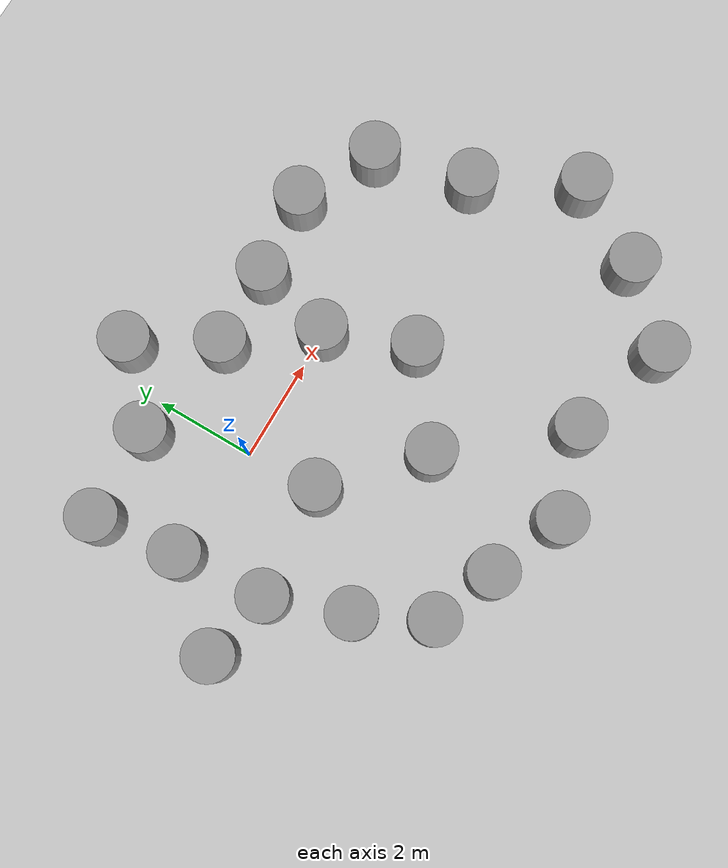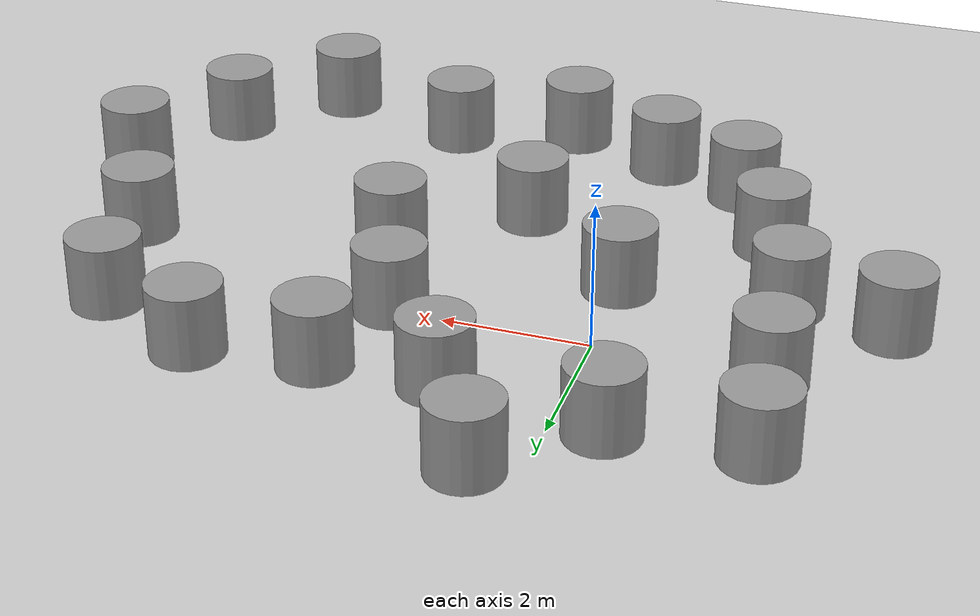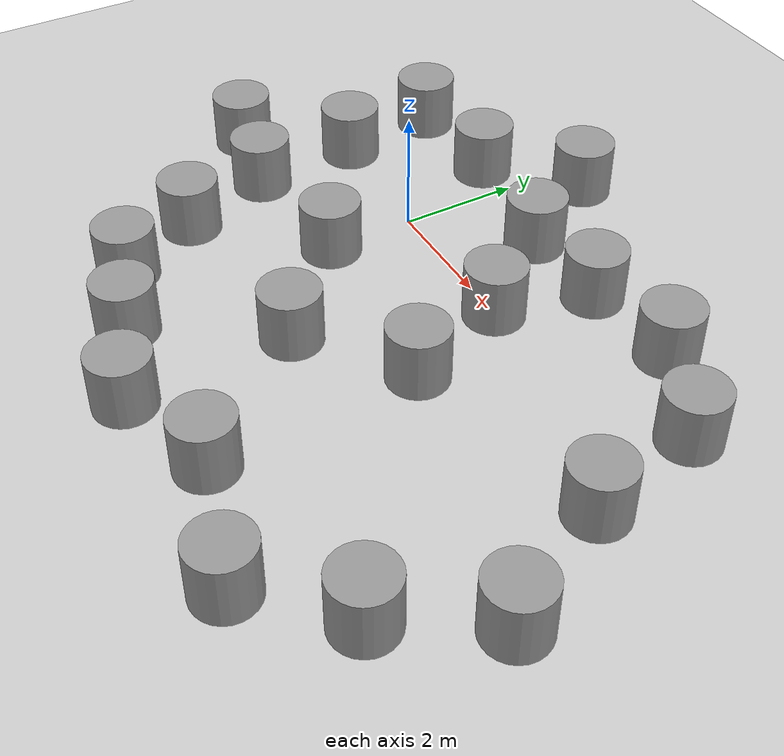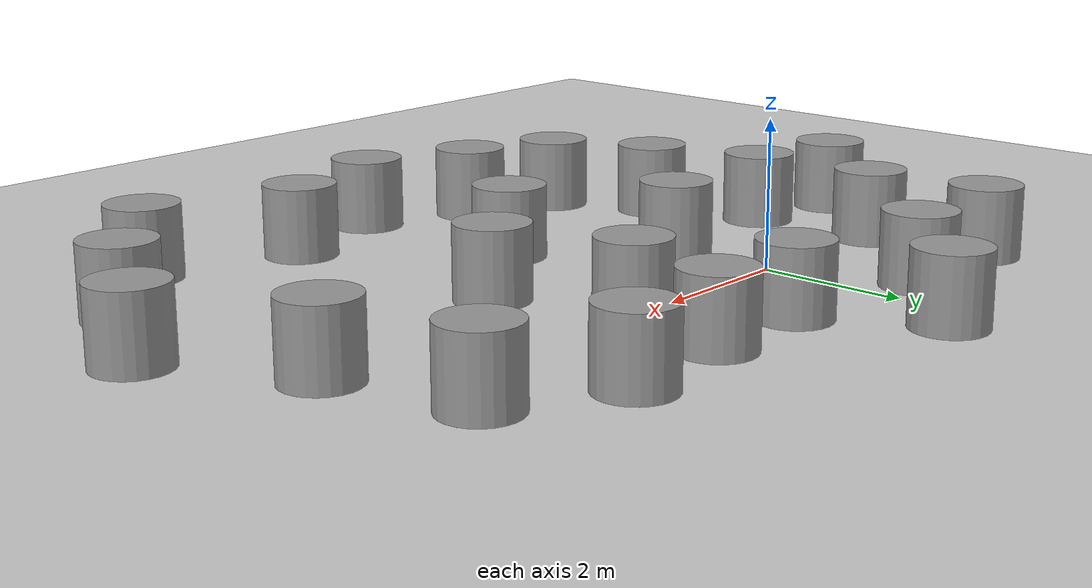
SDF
<sdf version="1.7">
 <world name="default">
  <model name="ground_plane">
   <static>1</static>
   <link name="link">
    <collision name="collision">
     <geometry><plane><normal>0 0 1</normal><size>100 100</size></plane></geometry>
     <surface><friction><ode><mu>100</mu><mu2>50</mu2></ode></friction></surface>
    </collision>
    <visual name="visual">
     <cast_shadows>0</cast_shadows>
     <geometry><plane><normal>0 0 1</normal><size>100 100</size></plane></geometry>
     <material>
      <script><uri>file://media/materials/scripts/gazebo.material</uri><name>Gazebo/Grey</name></script>
     </material>
    </visual>
   </link>
  </model>
  <light name="sun" type="directional">
   <pose>0 0 10 0 -0 0</pose>
   <diffuse>0.8 0.8 0.8 1</diffuse>
   <specular>0.2 0.2 0.2 1</specular>
   <attenuation>
    <range>1000</range>
    <constant>0.9</constant>
    <linear>0.01</linear>
    <quadratic>0.001</quadratic>
   </attenuation>
   <direction>-0.5 0.1 -0.9</direction>
   <spot><inner_angle>0</inner_angle><outer_angle>0</outer_angle><falloff>0</falloff></spot>
  </light>
  <scene><shadows>0</shadows><ambient>0.4 0.4 0.4 1</ambient><background>0.7 0.7 0.7 1</background></scene>
  <physics type="ode">
   <real_time_update_rate>1000</real_time_update_rate>
   <max_step_size>0.001</max_step_size>
   <real_time_factor>1</real_time_factor>
   <ode>
    <solver>
     <type>quick</type>
     <iters>150</iters>
     <precon_iters>0</precon_iters>
     <sor>1.4</sor>
     <use_dynamic_moi_rescaling>1</use_dynamic_moi_rescaling>
    </solver>
    <constraints>
     <cfm>1e-05</cfm>
     <erp>0.2</erp>
     <contact_max_correcting_vel>2000</contact_max_correcting_vel>
     <contact_surface_layer>0.01</contact_surface_layer>
    </constraints>
   </ode>
  </physics>
  <gravity>0 0 -9.8</gravity>
  <magnetic_field>6e-06 2.3e-05 -4.2e-05</magnetic_field>
  <atmosphere type="adiabatic"/>
  <spherical_coordinates>
   <surface_model>EARTH_WGS84</surface_model>
   <latitude_deg>0</latitude_deg>
   <longitude_deg>0</longitude_deg>
   <elevation>0</elevation>
   <heading_deg>0</heading_deg>
  </spherical_coordinates>
  <model name="unit_cylinder">
   <pose>1.55039 1.49242 0.499993 4e-06 3e-06 -0</pose>
   <link name="link">
    <inertial>
     <mass>1</mass>
     <inertia><ixx>0.145833</ixx><ixy>0</ixy><ixz>0</ixz><iyy>0.145833</iyy><iyz>0</iyz><izz>0.125</izz></inertia>
    </inertial>
    <collision name="collision">
     <geometry><cylinder><radius>0.5</radius><length>1</length></cylinder></geometry>
    </collision>
    <visual name="visual">
     <geometry><cylinder><radius>0.5</radius><length>1</length></cylinder></geometry>
     <material>
      <script><name>Gazebo/Grey</name><uri>file://media/materials/scripts/gazebo.material</uri></script>
     </material>
    </visual>
   </link>
  </model>
  <model name="unit_cylinder_0">
   <pose>2.71442 -0.028142 0.499998 -4e-06 -3e-06 -0</pose>
   <link name="link">
    <inertial>
     <mass>1</mass>
     <inertia><ixx>0.145833</ixx><ixy>0</ixy><ixz>0</ixz><iyy>0.145833</iyy><iyz>0</iyz><izz>0.125</izz></inertia>
    </inertial>
    <collision name="collision">
     <geometry><cylinder><radius>0.5</radius><length>1</length></cylinder></geometry>
    </collision>
    <visual name="visual">
     <geometry><cylinder><radius>0.5</radius><length>1</length></cylinder></geometry>
     <material>
      <script><name>Gazebo/Grey</name><uri>file://media/materials/scripts/gazebo.material</uri></script>
     </material>
    </visual>
   </link>
  </model>
  <model name="unit_cylinder_1">
   <pose>0.051197 -1.47652 0.499993 4e-06 4e-06 -0</pose>
   <link name="link">
    <inertial>
     <mass>1</mass>
     <inertia><ixx>0.145833</ixx><ixy>0</ixy><ixz>0</ixz><iyy>0.145833</iyy><iyz>0</iyz><izz>0.125</izz></inertia>
    </inertial>
    <collision name="collision">
     <geometry><cylinder><radius>0.5</radius><length>1</length></cylinder></geometry>
    </collision>
    <visual name="visual">
     <geometry><cylinder><radius>0.5</radius><length>1</length></cylinder></geometry>
     <material>
      <script><name>Gazebo/Grey</name><uri>file://media/materials/scripts/gazebo.material</uri></script>
     </material>
    </visual>
   </link>
  </model>
  <model name="unit_cylinder_2">
   <pose>-0.654714 1.86729 0.499998 -4e-06 -4e-06 -0</pose>
   <link name="link">
    <inertial>
     <mass>1</mass>
     <inertia><ixx>0.145833</ixx><ixy>0</ixy><ixz>0</ixz><iyy>0.145833</iyy><iyz>0</iyz><izz>0.125</izz></inertia>
    </inertial>
    <collision name="collision">
     <geometry><cylinder><radius>0.5</radius><length>1</length></cylinder></geometry>
    </collision>
    <visual name="visual">
     <geometry><cylinder><radius>0.5</radius><length>1</length></cylinder></geometry>
     <material>
      <script><name>Gazebo/Grey</name><uri>file://media/materials/scripts/gazebo.material</uri></script>
     </material>
    </visual>
   </link>
  </model>
  <model name="unit_cylinder_3">
   <pose>-2.28462 0.110741 0.499998 -4e-06 -4e-06 -0</pose>
   <link name="link">
    <inertial>
     <mass>1</mass>
     <inertia><ixx>0.145833</ixx><ixy>0</ixy><ixz>0</ixz><iyy>0.145833</iyy><iyz>0</iyz><izz>0.125</izz></inertia>
    </inertial>
    <collision name="collision">
     <geometry><cylinder><radius>0.5</radius><length>1</length></cylinder></geometry>
    </collision>
    <visual name="visual">
     <geometry><cylinder><radius>0.5</radius><length>1</length></cylinder></geometry>
     <material>
      <script><name>Gazebo/Grey</name><uri>file://media/materials/scripts/gazebo.material</uri></script>
     </material>
    </visual>
   </link>
  </model>
  <model name="unit_cylinder_4">
   <pose>-2.15514 -1.68476 0.499993 4e-06 4e-06 -0</pose>
   <link name="link">
    <inertial>
     <mass>1</mass>
     <inertia><ixx>0.145833</ixx><ixy>0</ixy><ixz>0</ixz><iyy>0.145833</iyy><iyz>0</iyz><izz>0.125</izz></inertia>
    </inertial>
    <collision name="collision">
     <geometry><cylinder><radius>0.5</radius><length>1</length></cylinder></geometry>
    </collision>
    <visual name="visual">
     <geometry><cylinder><radius>0.5</radius><length>1</length></cylinder></geometry>
     <material>
      <script><name>Gazebo/Grey</name><uri>file://media/materials/scripts/gazebo.material</uri></script>
     </material>
    </visual>
   </link>
  </model>
  <model name="unit_cylinder_5">
   <pose>0.644093 3.05934 0.499998 -4e-06 -4e-06 -0</pose>
   <link name="link">
    <inertial>
     <mass>1</mass>
     <inertia><ixx>0.145833</ixx><ixy>0</ixy><ixz>0</ixz><iyy>0.145833</iyy><iyz>0</iyz><izz>0.125</izz></inertia>
    </inertial>
    <collision name="collision">
     <geometry><cylinder><radius>0.5</radius><length>1</length></cylinder></geometry>
    </collision>
    <visual name="visual">
     <geometry><cylinder><radius>0.5</radius><length>1</length></cylinder></geometry>
     <material>
      <script><name>Gazebo/Grey</name><uri>file://media/materials/scripts/gazebo.material</uri></script>
     </material>
    </visual>
   </link>
  </model>
  <model name="unit_cylinder_6">
   <pose>-2.48774 1.77448 0.499993 4e-06 4e-06 -0</pose>
   <link name="link">
    <inertial>
     <mass>1</mass>
     <inertia><ixx>0.145833</ixx><ixy>0</ixy><ixz>0</ixz><iyy>0.145833</iyy><iyz>0</iyz><izz>0.125</izz></inertia>
    </inertial>
    <collision name="collision">
     <geometry><cylinder><radius>0.5</radius><length>1</length></cylinder></geometry>
    </collision>
    <visual name="visual">
     <geometry><cylinder><radius>0.5</radius><length>1</length></cylinder></geometry>
     <material>
      <script><name>Gazebo/Grey</name><uri>file://media/materials/scripts/gazebo.material</uri></script>
     </material>
    </visual>
   </link>
  </model>
  <model name="unit_cylinder_7">
   <pose>3.13015 1.52989 0.499998 -4e-06 -4e-06 -0</pose>
   <link name="link">
    <inertial>
     <mass>1</mass>
     <inertia><ixx>0.145833</ixx><ixy>0</ixy><ixz>0</ixz><iyy>0.145833</iyy><iyz>0</iyz><izz>0.125</izz></inertia>
    </inertial>
    <collision name="collision">
     <geometry><cylinder><radius>0.5</radius><length>1</length></cylinder></geometry>
    </collision>
    <visual name="visual">
     <geometry><cylinder><radius>0.5</radius><length>1</length></cylinder></geometry>
     <material>
      <script><name>Gazebo/Grey</name><uri>file://media/materials/scripts/gazebo.material</uri></script>
     </material>
    </visual>
   </link>
  </model>
  <model name="unit_cylinder_8">
   <pose>1.71311 -2.99576 0.499993 4e-06 4e-06 -0</pose>
   <link name="link">
    <inertial>
     <mass>1</mass>
     <inertia><ixx>0.145833</ixx><ixy>0</ixy><ixz>0</ixz><iyy>0.145833</iyy><iyz>0</iyz><izz>0.125</izz></inertia>
    </inertial>
    <collision name="collision">
     <geometry><cylinder><radius>0.5</radius><length>1</length></cylinder></geometry>
    </collision>
    <visual name="visual">
     <geometry><cylinder><radius>0.5</radius><length>1</length></cylinder></geometry>
     <material>
      <script><name>Gazebo/Grey</name><uri>file://media/materials/scripts/gazebo.material</uri></script>
     </material>
    </visual>
   </link>
  </model>
  <model name="unit_cylinder_9">
   <pose>4.77666 1.69581 0.499998 -4e-06 -4e-06 -0</pose>
   <link name="link">
    <inertial>
     <mass>1</mass>
     <inertia><ixx>0.145833</ixx><ixy>0</ixy><ixz>0</ixz><iyy>0.145833</iyy><iyz>0</iyz><izz>0.125</izz></inertia>
    </inertial>
    <collision name="collision">
     <geometry><cylinder><radius>0.5</radius><length>1</length></cylinder></geometry>
    </collision>
    <visual name="visual">
     <geometry><cylinder><radius>0.5</radius><length>1</length></cylinder></geometry>
     <material>
      <script><name>Gazebo/Grey</name><uri>file://media/materials/scripts/gazebo.material</uri></script>
     </material>
    </visual>
   </link>
  </model>
  <model name="unit_cylinder_10">
   <pose>-3.56107 -1.39873 0.499993 4e-06 4e-06 -0</pose>
   <link name="link">
    <inertial>
     <mass>1</mass>
     <inertia><ixx>0.145833</ixx><ixy>0</ixy><ixz>0</ixz><iyy>0.145833</iyy><iyz>0</iyz><izz>0.125</izz></inertia>
    </inertial>
    <collision name="collision">
     <geometry><cylinder><radius>0.5</radius><length>1</length></cylinder></geometry>
    </collision>
    <visual name="visual">
     <geometry><cylinder><radius>0.5</radius><length>1</length></cylinder></geometry>
     <material>
      <script><name>Gazebo/Grey</name><uri>file://media/materials/scripts/gazebo.material</uri></script>
     </material>
    </visual>
   </link>
  </model>
  <model name="unit_cylinder_11">
   <pose>-1.61637 -3.23315 0.499998 -4e-06 -4e-06 -0</pose>
   <link name="link">
    <inertial>
     <mass>1</mass>
     <inertia><ixx>0.145833</ixx><ixy>0</ixy><ixz>0</ixz><iyy>0.145833</iyy><iyz>0</iyz><izz>0.125</izz></inertia>
    </inertial>
    <collision name="collision">
     <geometry><cylinder><radius>0.5</radius><length>1</length></cylinder></geometry>
    </collision>
    <visual name="visual">
     <geometry><cylinder><radius>0.5</radius><length>1</length></cylinder></geometry>
     <material>
      <script><name>Gazebo/Grey</name><uri>file://media/materials/scripts/gazebo.material</uri></script>
     </material>
    </visual>
   </link>
  </model>
  <model name="unit_cylinder_12">
   <pose>6.30156 0.905405 0.499993 4e-06 4e-06 -0</pose>
   <link name="link">
    <inertial>
     <mass>1</mass>
     <inertia><ixx>0.145833</ixx><ixy>0</ixy><ixz>0</ixz><iyy>0.145833</iyy><iyz>0</iyz><izz>0.125</izz></inertia>
    </inertial>
    <collision name="collision">
     <geometry><cylinder><radius>0.5</radius><length>1</length></cylinder></geometry>
    </collision>
    <visual name="visual">
     <geometry><cylinder><radius>0.5</radius><length>1</length></cylinder></geometry>
     <material>
      <script><name>Gazebo/Grey</name><uri>file://media/materials/scripts/gazebo.material</uri></script>
     </material>
    </visual>
   </link>
  </model>
  <model name="unit_cylinder_13">
   <pose>6.76925 -1.00025 0.499993 4e-06 4e-06 -0</pose>
   <link name="link">
    <inertial>
     <mass>1</mass>
     <inertia><ixx>0.145833</ixx><ixy>0</ixy><ixz>0</ixz><iyy>0.145833</iyy><iyz>0</iyz><izz>0.125</izz></inertia>
    </inertial>
    <collision name="collision">
     <geometry><cylinder><radius>0.5</radius><length>1</length></cylinder></geometry>
    </collision>
    <visual name="visual">
     <geometry><cylinder><radius>0.5</radius><length>1</length></cylinder></geometry>
     <material>
      <script><name>Gazebo/Grey</name><uri>file://media/materials/scripts/gazebo.material</uri></script>
     </material>
    </visual>
   </link>
  </model>
  <model name="unit_cylinder_16">
   <pose>3.51246 -5.15063 0.499993 4e-06 4e-06 -0</pose>
   <link name="link">
    <inertial>
     <mass>1</mass>
     <inertia><ixx>0.145833</ixx><ixy>0</ixy><ixz>0</ixz><iyy>0.145833</iyy><iyz>0</iyz><izz>0.125</izz></inertia>
    </inertial>
    <collision name="collision">
     <geometry><cylinder><radius>0.5</radius><length>1</length></cylinder></geometry>
    </collision>
    <visual name="visual">
     <geometry><cylinder><radius>0.5</radius><length>1</length></cylinder></geometry>
     <material>
      <script><name>Gazebo/Grey</name><uri>file://media/materials/scripts/gazebo.material</uri></script>
     </material>
    </visual>
   </link>
  </model>
  <model name="unit_cylinder_17">
   <pose>1.81374 -5.69065 0.499997 -4e-06 -4e-06 -0</pose>
   <link name="link">
    <inertial>
     <mass>1</mass>
     <inertia><ixx>0.145833</ixx><ixy>0</ixy><ixz>0</ixz><iyy>0.145833</iyy><iyz>0</iyz><izz>0.125</izz></inertia>
    </inertial>
    <collision name="collision">
     <geometry><cylinder><radius>0.5</radius><length>1</length></cylinder></geometry>
    </collision>
    <visual name="visual">
     <geometry><cylinder><radius>0.5</radius><length>1</length></cylinder></geometry>
     <material>
      <script><name>Gazebo/Grey</name><uri>file://media/materials/scripts/gazebo.material</uri></script>
     </material>
    </visual>
   </link>
  </model>
  <model name="unit_cylinder_18">
   <pose>0.329054 -5.08662 0.499993 4e-06 4e-06 -0</pose>
   <link name="link">
    <inertial>
     <mass>1</mass>
     <inertia><ixx>0.145833</ixx><ixy>0</ixy><ixz>0</ixz><iyy>0.145833</iyy><iyz>0</iyz><izz>0.125</izz></inertia>
    </inertial>
    <collision name="collision">
     <geometry><cylinder><radius>0.5</radius><length>1</length></cylinder></geometry>
    </collision>
    <visual name="visual">
     <geometry><cylinder><radius>0.5</radius><length>1</length></cylinder></geometry>
     <material>
      <script><name>Gazebo/Grey</name><uri>file://media/materials/scripts/gazebo.material</uri></script>
     </material>
    </visual>
   </link>
  </model>
  <model name="unit_cylinder_19">
   <pose>-0.948398 -4.59314 0.499997 -4e-06 -4e-06 -0</pose>
   <link name="link">
    <inertial>
     <mass>1</mass>
     <inertia><ixx>0.145833</ixx><ixy>0</ixy><ixz>0</ixz><iyy>0.145833</iyy><iyz>0</iyz><izz>0.125</izz></inertia>
    </inertial>
    <collision name="collision">
     <geometry><cylinder><radius>0.5</radius><length>1</length></cylinder></geometry>
    </collision>
    <visual name="visual">
     <geometry><cylinder><radius>0.5</radius><length>1</length></cylinder></geometry>
     <material>
      <script><name>Gazebo/Grey</name><uri>file://media/materials/scripts/gazebo.material</uri></script>
     </material>
    </visual>
   </link>
  </model>
  <model name="unit_cylinder_14">
   <pose>7.79977 -2.93825 0.499993 4e-06 4e-06 -0</pose>
   <link name="link">
    <inertial>
     <mass>1</mass>
     <inertia><ixx>0.145833</ixx><ixy>0</ixy><ixz>0</ixz><iyy>0.145833</iyy><iyz>0</iyz><izz>0.125</izz></inertia>
    </inertial>
    <collision name="collision">
     <geometry><cylinder><radius>0.5</radius><length>1</length></cylinder></geometry>
    </collision>
    <visual name="visual">
     <geometry><cylinder><radius>0.5</radius><length>1</length></cylinder></geometry>
     <material>
      <script><name>Gazebo/Grey</name><uri>file://media/materials/scripts/gazebo.material</uri></script>
     </material>
    </visual>
   </link>
  </model>
  <model name="unit_cylinder_15">
   <pose>6.84037 -4.50168 0.499997 -4e-06 -4e-06 -0</pose>
   <link name="link">
    <inertial>
     <mass>1</mass>
     <inertia><ixx>0.145833</ixx><ixy>0</ixy><ixz>0</ixz><iyy>0.145833</iyy><iyz>0</iyz><izz>0.125</izz></inertia>
    </inertial>
    <collision name="collision">
     <geometry><cylinder><radius>0.5</radius><length>1</length></cylinder></geometry>
    </collision>
    <visual name="visual">
     <geometry><cylinder><radius>0.5</radius><length>1</length></cylinder></geometry>
     <material>
      <script><name>Gazebo/Grey</name><uri>file://media/materials/scripts/gazebo.material</uri></script>
     </material>
    </visual>
   </link>
  </model>
  <model name="unit_cylinder_20">
   <pose>5.57942 -5.78687 0.499993 4e-06 4e-06 -0</pose>
   <link name="link">
    <inertial>
     <mass>1</mass>
     <inertia><ixx>0.145833</ixx><ixy>0</ixy><ixz>0</ixz><iyy>0.145833</iyy><iyz>0</iyz><izz>0.125</izz></inertia>
    </inertial>
    <collision name="collision">
     <geometry><cylinder><radius>0.5</radius><length>1</length></cylinder></geometry>
    </collision>
    <visual name="visual">
     <geometry><cylinder><radius>0.5</radius><length>1</length></cylinder></geometry>
     <material>
      <script><name>Gazebo/Grey</name><uri>file://media/materials/scripts/gazebo.material</uri></script>
     </material>
    </visual>
   </link>
  </model>
  <model name="unit_cylinder_21">
   <pose>3.34926 -1.7445 0.499997 -4e-06 -4e-06 -0</pose>
   <link name="link">
    <inertial>
     <mass>1</mass>
     <inertia><ixx>0.145833</ixx><ixy>0</ixy><ixz>0</ixz><iyy>0.145833</iyy><iyz>0</iyz><izz>0.125</izz></inertia>
    </inertial>
    <collision name="collision">
     <geometry><cylinder><radius>0.5</radius><length>1</length></cylinder></geometry>
    </collision>
    <visual name="visual">
     <geometry><cylinder><radius>0.5</radius><length>1</length></cylinder></geometry>
     <material>
      <script><name>Gazebo/Grey</name><uri>file://media/materials/scripts/gazebo.material</uri></script>
     </material>
    </visual>
   </link>
  </model>
 </world>
</sdf>
